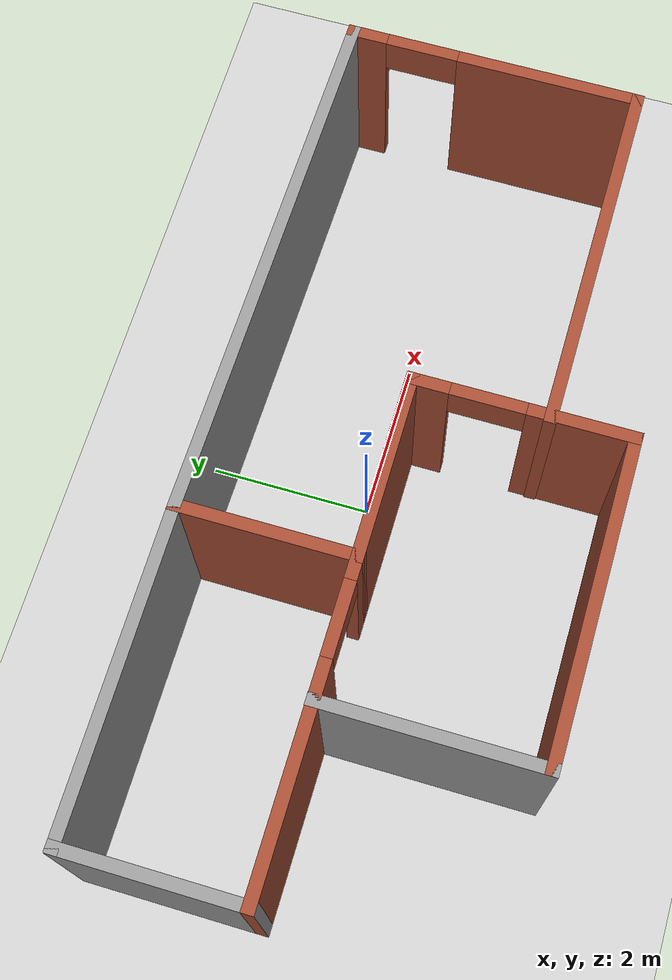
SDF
<?xml version='1.0'?>
<sdf version='1.6'>
  <world name='Custom_world'>
    <pose>0 0 0 0 -0 0</pose>
    <include>
      <uri>model://ground_plane</uri>
    </include>

    <include>
      <uri>model://sun</uri>
    </include>
    <model name="custom walls">
    <link name='Wall_0'>
      <collision name='Wall_0_Collision'>
        <geometry>
          <box>
            <size>4 0.15 2.5</size>
          </box>
        </geometry>
        <pose>0 0 1.25 0 -0 0</pose>
      </collision>
      <visual name='Wall_0_Visual'>
        <pose>0 0 1.25 0 -0 0</pose>
        <geometry>
          <box>
            <size>4 0.15 2.5</size>
          </box>
        </geometry>
        <material>
          <script>
            <uri>file://media/materials/scripts/gazebo.material</uri>
            <name>Gazebo/Grey</name>
          </script>
          <ambient>1 1 1 1</ambient>
        </material>
        <meta>
          <layer>0</layer>
        </meta>
      </visual>
      <pose>-3.26349 1.80508 0 0 -0 0</pose>
    </link>
    <link name='Wall_1'>
      <collision name='Wall_1_Collision'>
        <geometry>
          <box>
            <size>2.25 0.15 2.5</size>
          </box>
        </geometry>
        <pose>0 0 1.25 0 -0 0</pose>
      </collision>
      <visual name='Wall_1_Visual'>
        <pose>0 0 1.25 0 -0 0</pose>
        <geometry>
          <box>
            <size>2.25 0.15 2.5</size>
          </box>
        </geometry>
        <material>
          <script>
            <uri>file://media/materials/scripts/gazebo.material</uri>
            <name>Gazebo/Bricks</name>
          </script>
          <ambient>1 1 1 1</ambient>
        </material>
        <meta>
          <layer>0</layer>
        </meta>
      </visual>
      <pose>-1.33849 0.755084 0 0 -0 -1.5708</pose>
    </link>
    <link name='Wall_11'>
      <collision name='Wall_11_Collision'>
        <geometry>
          <box>
            <size>4.5 0.15 2.5</size>
          </box>
        </geometry>
        <pose>0 0 1.25 0 -0 0</pose>
      </collision>
      <visual name='Wall_11_Visual'>
        <pose>0 0 1.25 0 -0 0</pose>
        <geometry>
          <box>
            <size>4.5 0.15 2.5</size>
          </box>
        </geometry>
        <material>
          <script>
            <uri>file://media/materials/scripts/gazebo.material</uri>
            <name>Gazebo/Bricks</name>
          </script>
          <ambient>1 1 1 1</ambient>
        </material>
        <meta>
          <layer>0</layer>
        </meta>
      </visual>
      <pose>3.0121 -1.91742 0 0 -0 0</pose>
    </link>
    <link name='Wall_14'>
      <pose>5.1871 -0.117421 0 0 -0 1.5708</pose>
      <visual name='Wall_14_Visual_0'>
        <pose>-0.708921 0 1.25 0 -0 0</pose>
        <geometry>
          <box>
            <size>2.33216 0.15 2.5</size>
          </box>
        </geometry>
        <material>
          <script>
            <uri>file://media/materials/scripts/gazebo.material</uri>
            <name>Gazebo/Bricks</name>
          </script>
          <ambient>1 1 1 1</ambient>
        </material>
        <meta>
          <layer>0</layer>
        </meta>
      </visual>
      <collision name='Wall_14_Collision_0'>
        <geometry>
          <box>
            <size>2.33216 0.15 2.5</size>
          </box>
        </geometry>
        <pose>-0.708921 0 1.25 0 -0 0</pose>
      </collision>
      <visual name='Wall_14_Visual_1'>
        <pose>1.61608 0 1.25 0 -0 0</pose>
        <geometry>
          <box>
            <size>0.517843 0.15 2.5</size>
          </box>
        </geometry>
        <material>
          <script>
            <uri>file://media/materials/scripts/gazebo.material</uri>
            <name>Gazebo/Bricks</name>
          </script>
          <ambient>1 1 1 1</ambient>
        </material>
        <meta>
          <layer>0</layer>
        </meta>
      </visual>
      <collision name='Wall_14_Collision_1'>
        <geometry>
          <box>
            <size>0.517843 0.15 2.5</size>
          </box>
        </geometry>
        <pose>1.61608 0 1.25 0 -0 0</pose>
      </collision>
      <visual name='Wall_14_Visual_2'>
        <pose>0.907157 0 2.25 0 -0 0</pose>
        <geometry>
          <box>
            <size>0.9 0.15 0.5</size>
          </box>
        </geometry>
        <material>
          <script>
            <uri>file://media/materials/scripts/gazebo.material</uri>
            <name>Gazebo/Bricks</name>
          </script>
          <ambient>1 1 1 1</ambient>
        </material>
        <meta>
          <layer>0</layer>
        </meta>
      </visual>
      <collision name='Wall_14_Collision_2'>
        <geometry>
          <box>
            <size>0.9 0.15 0.5</size>
          </box>
        </geometry>
        <pose>0.907157 0 2.25 0 -0 0</pose>
      </collision>
    </link>
    <link name='Wall_15'>
      <collision name='Wall_15_Collision'>
        <geometry>
          <box>
            <size>6.67674 0.15 2.5</size>
          </box>
        </geometry>
        <pose>0 0 1.25 0 -0 0</pose>
      </collision>
      <visual name='Wall_15_Visual'>
        <pose>0 0 1.25 0 -0 0</pose>
        <geometry>
          <box>
            <size>6.67674 0.15 2.5</size>
          </box>
        </geometry>
        <material>
          <script>
            <uri>file://media/materials/scripts/gazebo.material</uri>
            <name>Gazebo/Grey</name>
          </script>
          <ambient>1 1 1 1</ambient>
        </material>
        <meta>
          <layer>0</layer>
        </meta>
      </visual>
      <pose>1.9243 1.74383 0 0 -0 3.12282</pose>
    </link>
    <link name='Wall_2'>
      <pose>-3.26349 -0.294916 0 0 -0 3.14159</pose>
      <visual name='Wall_2_Visual_0'>
        <pose>-1.8225 0 1.25 0 -0 0</pose>
        <geometry>
          <box>
            <size>0.355 0.15 2.5</size>
          </box>
        </geometry>
        <material>
          <script>
            <uri>file://media/materials/scripts/gazebo.material</uri>
            <name>Gazebo/Bricks</name>
          </script>
          <ambient>1 1 1 1</ambient>
        </material>
        <meta>
          <layer>0</layer>
        </meta>
      </visual>
      <collision name='Wall_2_Collision_0'>
        <geometry>
          <box>
            <size>0.355 0.15 2.5</size>
          </box>
        </geometry>
        <pose>-1.8225 0 1.25 0 -0 0</pose>
      </collision>
      <visual name='Wall_2_Visual_1'>
        <pose>0.6275 0 1.25 0 -0 0</pose>
        <geometry>
          <box>
            <size>2.745 0.15 2.5</size>
          </box>
        </geometry>
        <material>
          <script>
            <uri>file://media/materials/scripts/gazebo.material</uri>
            <name>Gazebo/Bricks</name>
          </script>
          <ambient>1 1 1 1</ambient>
        </material>
        <meta>
          <layer>0</layer>
        </meta>
      </visual>
      <collision name='Wall_2_Collision_1'>
        <geometry>
          <box>
            <size>2.745 0.15 2.5</size>
          </box>
        </geometry>
        <pose>0.6275 0 1.25 0 -0 0</pose>
      </collision>
      <visual name='Wall_2_Visual_2'>
        <pose>-1.195 0 2.25 0 -0 0</pose>
        <geometry>
          <box>
            <size>0.9 0.15 0.5</size>
          </box>
        </geometry>
        <material>
          <script>
            <uri>file://media/materials/scripts/gazebo.material</uri>
            <name>Gazebo/Bricks</name>
          </script>
          <ambient>1 1 1 1</ambient>
        </material>
        <meta>
          <layer>0</layer>
        </meta>
      </visual>
      <collision name='Wall_2_Collision_2'>
        <geometry>
          <box>
            <size>0.9 0.15 0.5</size>
          </box>
        </geometry>
        <pose>-1.195 0 2.25 0 -0 0</pose>
      </collision>
    </link>
    <link name='Wall_3'>
      <collision name='Wall_3_Collision'>
        <geometry>
          <box>
            <size>2.25 0.15 2.5</size>
          </box>
        </geometry>
        <pose>0 0 1.25 0 -0 0</pose>
      </collision>
      <visual name='Wall_3_Visual'>
        <pose>0 0 1.25 0 -0 0</pose>
        <geometry>
          <box>
            <size>2.25 0.15 2.5</size>
          </box>
        </geometry>
        <material>
          <script>
            <uri>file://media/materials/scripts/gazebo.material</uri>
            <name>Gazebo/Grey</name>
          </script>
          <ambient>1 1 1 1</ambient>
        </material>
        <meta>
          <layer>0</layer>
        </meta>
      </visual>
      <pose>-5.18849 0.755084 0 0 -0 1.5708</pose>
    </link>
    <link name='Wall_6'>
      <collision name='Wall_6_Collision'>
        <geometry>
          <box>
            <size>2.75 0.15 2.5</size>
          </box>
        </geometry>
        <pose>0 0 1.25 0 -0 0</pose>
      </collision>
      <visual name='Wall_6_Visual'>
        <pose>0 0 1.25 0 -0 0</pose>
        <geometry>
          <box>
            <size>2.75 0.15 2.5</size>
          </box>
        </geometry>
        <material>
          <script>
            <uri>file://media/materials/scripts/gazebo.material</uri>
            <name>Gazebo/Grey</name>
          </script>
          <ambient>1 1 1 1</ambient>
        </material>
        <meta>
          <layer>0</layer>
        </meta>
      </visual>
      <pose>-2.99551 -1.59008 0 0 -0 -1.5708</pose>
    </link>
    <link name='Wall_7'>
      <collision name='Wall_7_Collision'>
        <geometry>
          <box>
            <size>4 0.15 2.5</size>
          </box>
        </geometry>
        <pose>0 0 1.25 0 -0 0</pose>
      </collision>
      <visual name='Wall_7_Visual'>
        <pose>0 0 1.25 0 -0 0</pose>
        <geometry>
          <box>
            <size>4 0.15 2.5</size>
          </box>
        </geometry>
        <material>
          <script>
            <uri>file://media/materials/scripts/gazebo.material</uri>
            <name>Gazebo/Bricks</name>
          </script>
          <ambient>1 1 1 1</ambient>
        </material>
        <meta>
          <layer>0</layer>
        </meta>
      </visual>
      <pose>-1.07051 -2.89009 0 0 -0 0</pose>
    </link>
    <link name='Wall_8'>
      <pose>0.854493 -1.59008 0 0 -0 1.5708</pose>
      <visual name='Wall_8_Visual_0'>
        <pose>-0.711158 0 1.25 0 -0 0</pose>
        <geometry>
          <box>
            <size>1.32768 0.15 2.5</size>
          </box>
        </geometry>
        <material>
          <script>
            <uri>file://media/materials/scripts/gazebo.material</uri>
            <name>Gazebo/Bricks</name>
          </script>
          <ambient>1 1 1 1</ambient>
        </material>
        <meta>
          <layer>0</layer>
        </meta>
      </visual>
      <collision name='Wall_8_Collision_0'>
        <geometry>
          <box>
            <size>1.32768 0.15 2.5</size>
          </box>
        </geometry>
        <pose>-0.711158 0 1.25 0 -0 0</pose>
      </collision>
      <visual name='Wall_8_Visual_1'>
        <pose>1.11384 0 1.25 0 -0 0</pose>
        <geometry>
          <box>
            <size>0.522316 0.15 2.5</size>
          </box>
        </geometry>
        <material>
          <script>
            <uri>file://media/materials/scripts/gazebo.material</uri>
            <name>Gazebo/Bricks</name>
          </script>
          <ambient>1 1 1 1</ambient>
        </material>
        <meta>
          <layer>0</layer>
        </meta>
      </visual>
      <collision name='Wall_8_Collision_1'>
        <geometry>
          <box>
            <size>0.522316 0.15 2.5</size>
          </box>
        </geometry>
        <pose>1.11384 0 1.25 0 -0 0</pose>
      </collision>
      <visual name='Wall_8_Visual_2'>
        <pose>0.402684 0 2.25 0 -0 0</pose>
        <geometry>
          <box>
            <size>0.9 0.15 0.5</size>
          </box>
        </geometry>
        <material>
          <script>
            <uri>file://media/materials/scripts/gazebo.material</uri>
            <name>Gazebo/Bricks</name>
          </script>
          <ambient>1 1 1 1</ambient>
        </material>
        <meta>
          <layer>0</layer>
        </meta>
      </visual>
      <collision name='Wall_8_Collision_2'>
        <geometry>
          <box>
            <size>0.9 0.15 0.5</size>
          </box>
        </geometry>
        <pose>0.402684 0 2.25 0 -0 0</pose>
      </collision>
    </link>
    <link name='Wall_9'>
      <collision name='Wall_9_Collision'>
        <geometry>
          <box>
            <size>2.34299 0.15 2.5</size>
          </box>
        </geometry>
        <pose>0 0 1.25 0 -0 0</pose>
      </collision>
      <visual name='Wall_9_Visual'>
        <pose>0 0 1.25 0 -0 0</pose>
        <geometry>
          <box>
            <size>2.34299 0.15 2.5</size>
          </box>
        </geometry>
        <material>
          <script>
            <uri>file://media/materials/scripts/gazebo.material</uri>
            <name>Gazebo/Bricks</name>
          </script>
          <ambient>1 1 1 1</ambient>
        </material>
        <meta>
          <layer>0</layer>
        </meta>
      </visual>
      <pose>-0.242 -0.2925 0 0 -0 -3.13939</pose>
    </link>
    </model>
  </world>
</sdf>
